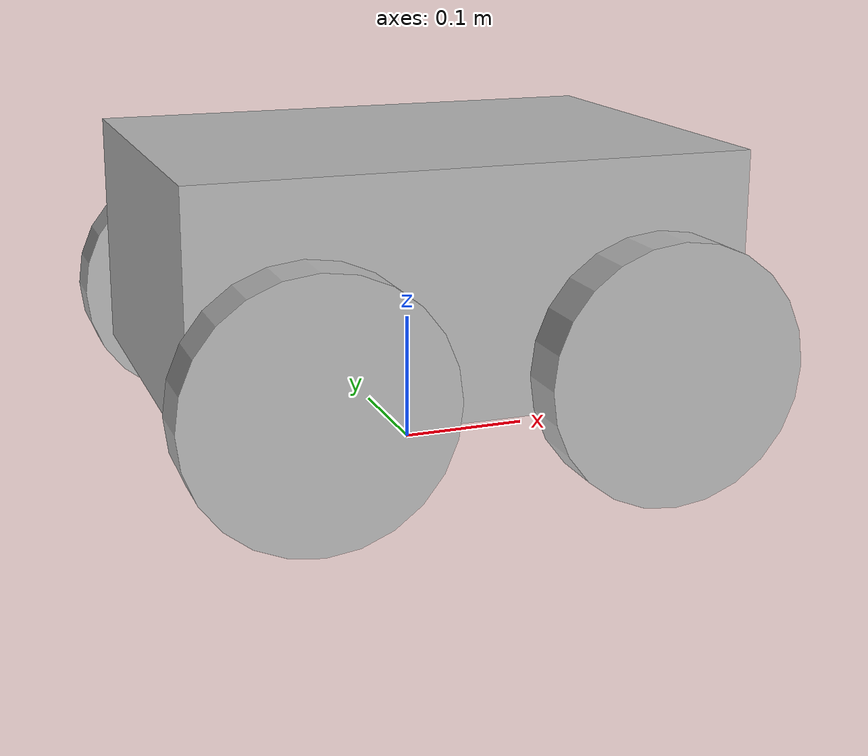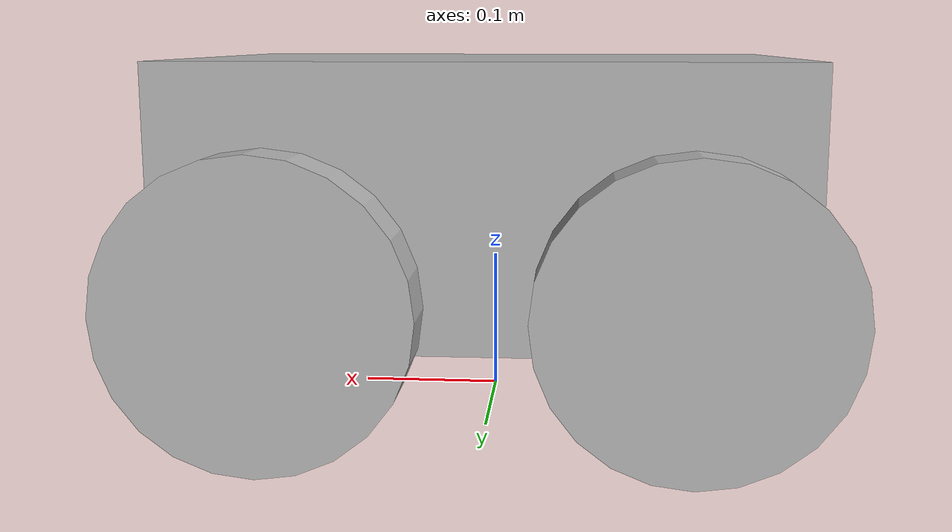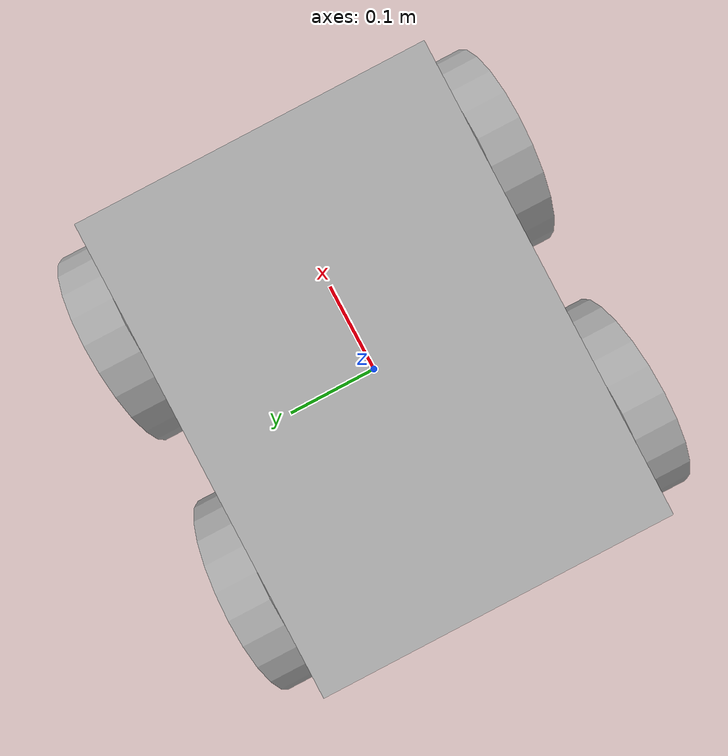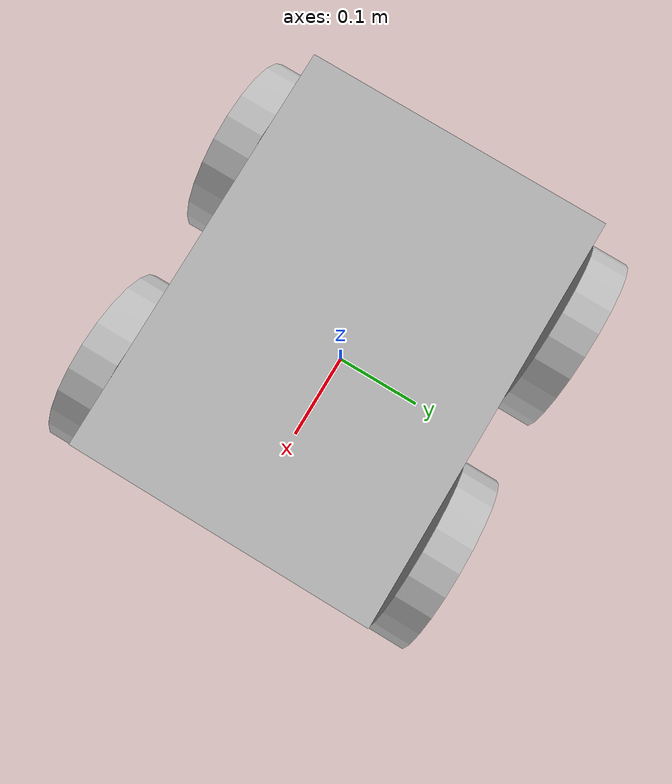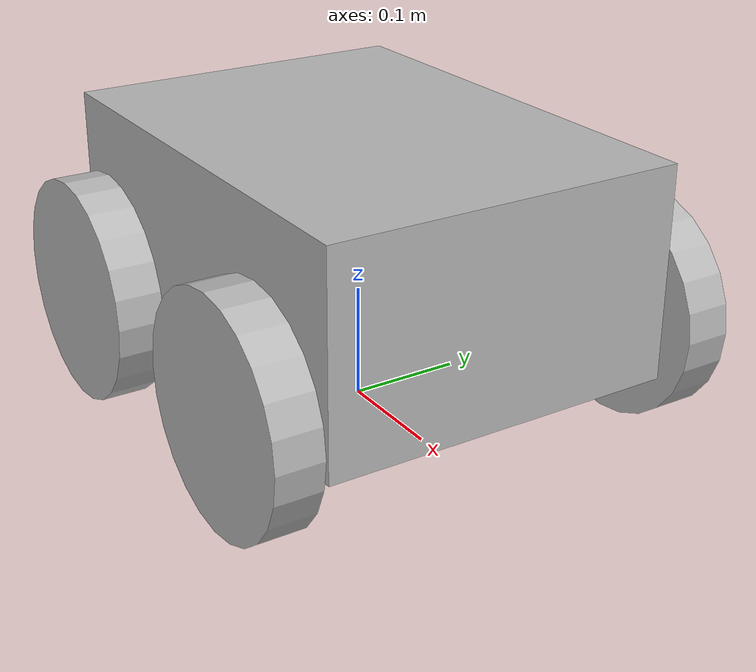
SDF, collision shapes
<?xml version="1.0"?>
<sdf version="1.6">
    <model name="X2">
        <pose>0 0 0.063494 0 0 0</pose>
        <enable_wind>1</enable_wind>
        <link name="base_link">
            <inertial>
                <pose>0.011999 0.002 0.066996 0 -0 0</pose>
                <mass>16.524</mass>
                <inertia>
                    <ixx>0.320605</ixx>
                    <ixy>-0.000800023</ixy>
                    <ixz>0.0163992</ixz>
                    <iyy>0.399205</iyy>
                    <iyz>-0.000900133</iyz>
                    <izz>0.455501</izz>
                </inertia>
            </inertial>
            <collision name="chassis_collision">
                <pose>0 0 0.092 0 -0 0</pose>
                <geometry>
                    <box>
                        <size>0.42 0.31 0.184</size>
                    </box>
                </geometry>
            </collision>
            <visual name="chassis_visual">
                <pose>0 0 -0.0655 1.5708 0 -1.5708</pose>
                <geometry>
                    <mesh>
                        <uri>meshes/x2_chassis.dae</uri>
                    </mesh>
                </geometry>
            </visual>
            <visual name="navsat_visual_1">
                <pose>-0.18 0.126 0.1895 0 -0 0</pose>
                <geometry>
                    <cylinder>
                        <length>0.016</length>
                        <radius>0.026</radius>
                    </cylinder>
                </geometry>
            </visual>
            <visual name="center_left_headlight_visual">
                <pose>0.22 0.05 0.0845 0 -0 -3.14159</pose>
                <geometry>
                    <mesh>
                        <uri>meshes/headlight.dae</uri>
                    </mesh>
                </geometry>
            </visual>
            <visual name="left_headlight_visual">
                <pose>0.22 0.145 0.0845 0 -0 -3.14159</pose>
                <geometry>
                    <mesh>
                        <uri>meshes/headlight.dae</uri>
                    </mesh>
                </geometry>
            </visual>
            <visual name="center_right_headlight_visual">
                <pose>0.22 -0.05 0.0845 0 -0 -3.14159</pose>
                <geometry>
                    <mesh>
                        <uri>meshes/headlight.dae</uri>
                    </mesh>
                </geometry>
            </visual>
            <visual name="right_headlight_visual">
                <pose>0.22 -0.145 0.0845 0 -0 -3.14159</pose>
                <geometry>
                    <mesh>
                        <uri>meshes/headlight.dae</uri>
                    </mesh>
                </geometry>
            </visual>
            <light name="left_light_source" type="spot">
                <pose>0.273 0.145 0.141 3.14159 1.56859 0</pose>
                <attenuation>
                    <range>25</range>
                    <linear>0</linear>
                    <constant>0.1</constant>
                    <quadratic>0.005</quadratic>
                </attenuation>
                <diffuse>0.8 0.8 0.5 1</diffuse>
                <specular>0.8 0.8 0.5 1</specular>
                <spot>
                    <inner_angle>1</inner_angle>
                    <outer_angle>1.1</outer_angle>
                    <falloff>1</falloff>
                </spot>
                <direction>0 0 -1</direction>
                <cast_shadows>1</cast_shadows>
            </light>
            <light name="right_light_source" type="spot">
                <pose>0.273 -0.145 0.141 3.14159 1.56859 0</pose>
                <attenuation>
                    <range>25</range>
                    <linear>0</linear>
                    <constant>0.1</constant>
                    <quadratic>0.005</quadratic>
                </attenuation>
                <diffuse>0.8 0.8 0.5 1</diffuse>
                <specular>0.8 0.8 0.5 1</specular>
                <spot>
                    <inner_angle>1</inner_angle>
                    <outer_angle>1.1</outer_angle>
                    <falloff>1</falloff>
                </spot>
                <direction>0 0 -1</direction>
                <cast_shadows>1</cast_shadows>
            </light>
            <light name="center_left_light_source" type="spot">
                <pose>0.273 0.05 0.141 3.14159 1.56859 0</pose>
                <attenuation>
                    <range>25</range>
                    <linear>0</linear>
                    <constant>0.1</constant>
                    <quadratic>0.005</quadratic>
                </attenuation>
                <diffuse>0.8 0.8 0.5 1</diffuse>
                <specular>0.8 0.8 0.5 1</specular>
                <spot>
                    <inner_angle>1</inner_angle>
                    <outer_angle>1.1</outer_angle>
                    <falloff>1</falloff>
                </spot>
                <direction>0 0 -1</direction>
                <cast_shadows>1</cast_shadows>
            </light>
            <light name="center_right_light_source" type="spot">
                <pose>0.273 -0.05 0.141 3.14159 1.56859 0</pose>
                <attenuation>
                    <range>25</range>
                    <linear>0</linear>
                    <constant>0.1</constant>
                    <quadratic>0.005</quadratic>
                </attenuation>
                <diffuse>0.8 0.8 0.5 1</diffuse>
                <specular>0.8 0.8 0.5 1</specular>
                <spot>
                    <inner_angle>1</inner_angle>
                    <outer_angle>1.1</outer_angle>
                    <falloff>1</falloff>
                </spot>
                <direction>0 0 -1</direction>
                <cast_shadows>1</cast_shadows>
            </light>
            <sensor name="imu_sensor" type="imu">
                <always_on>1</always_on>
                <update_rate>50</update_rate>
            <imu>
                <enable_orientation>0</enable_orientation>
                <angular_velocity>
                        <x>
                            <noise type="gaussian">
                                <mean>0</mean>
                                <stddev>0.009</stddev>
                                <bias_mean>0.00075</bias_mean>
                                <bias_stddev>0.005</bias_stddev>
                                <dynamic_bias_stddev>0.00002</dynamic_bias_stddev>
                                <dynamic_bias_correlation_time>400.0</dynamic_bias_correlation_time>
                                <precision>0.00025</precision>
                            </noise>
                        </x>
                        <y>
                            <noise type="gaussian">
                                <mean>0</mean>
                                <stddev>0.009</stddev>
                                <bias_mean>0.00075</bias_mean>
                                <bias_stddev>0.005</bias_stddev>
                                <dynamic_bias_stddev>0.00002</dynamic_bias_stddev>
                                <dynamic_bias_correlation_time>400.0</dynamic_bias_correlation_time>
                                <precision>0.00025</precision>
                            </noise>
                        </y>
                        <z>
                            <noise type="gaussian">
                                <mean>0</mean>
                                <stddev>0.009</stddev>
                                <bias_mean>0.00075</bias_mean>
                                <bias_stddev>0.005</bias_stddev>
                                <dynamic_bias_stddev>0.00002</dynamic_bias_stddev>
                                <dynamic_bias_correlation_time>400.0</dynamic_bias_correlation_time>
                                <precision>0.00025</precision>
                            </noise>
                        </z>
                    </angular_velocity>
                    <linear_acceleration>
                        <x>
                            <noise type="gaussian">
                                <mean>0</mean>
                                <stddev>0.021</stddev>
                                <bias_mean>0.05</bias_mean>
                                <bias_stddev>0.0075</bias_stddev>
                                <dynamic_bias_stddev>0.000375</dynamic_bias_stddev>
                                <dynamic_bias_correlation_time>175.0</dynamic_bias_correlation_time>
                                <precision>0.005</precision>
                            </noise>
                        </x>
                        <y>
                            <noise type="gaussian">
                                <mean>0</mean>
                                <stddev>0.021</stddev>
                                <bias_mean>0.05</bias_mean>
                                <bias_stddev>0.0075</bias_stddev>
                                <dynamic_bias_stddev>0.000375</dynamic_bias_stddev>
                                <dynamic_bias_correlation_time>175.0</dynamic_bias_correlation_time>
                                <precision>0.005</precision>
                            </noise>
                        </y>
                        <z>
                            <noise type="gaussian">
                                <mean>0</mean>
                                <stddev>0.021</stddev>
                                <bias_mean>0.05</bias_mean>
                                <bias_stddev>0.0075</bias_stddev>
                                <dynamic_bias_stddev>0.000375</dynamic_bias_stddev>
                                <dynamic_bias_correlation_time>175.0</dynamic_bias_correlation_time>
                                <precision>0.005</precision>
                            </noise>
                        </z>
                    </linear_acceleration>
                </imu>
            </sensor>
            <visual name="camera_visual">
                <pose>0.23 0 0.19 0 0 0</pose>
                <geometry>
                    <box>
                        <size>0.02 0.02 0.02</size>
                    </box>
                </geometry>
            </visual>
            <sensor name="camera_front" type="camera">
                <pose>0.23 0 0.19 0 0 0</pose>
                <always_on>1</always_on>
                <update_rate>20</update_rate>
                <camera name="camera_front">
                    <pose frame="">0 0 0 0 -1.5707 1.5707</pose>
                    <horizontal_fov>1.0472</horizontal_fov>
                    <lens>
                        <intrinsics>
                            <!-- fx = fy = width / ( 2 * tan (hfov / 2 ) ) -->
                            <fx>1108.5</fx>
                            <fy>1108.5</fy>
                            <!-- cx = ( width + 1 ) / 2 -->
                            <cx>640.5</cx>
                            <!-- cy = ( height + 1 ) / 2 -->
                            <cy>480.5</cy>
                            <s>0</s>
                        </intrinsics>
                    </lens>
                    <distortion>
                        <k1>0.0</k1>
                        <k2>0.0</k2>
                        <k3>0.0</k3>
                        <p1>0.0</p1>
                        <p2>0.0</p2>
                        <center>0.5 0.5</center>
                    </distortion>
                    <image>
                        <width>1280</width>
                        <height>960</height>
                        <format>R8G8B8</format>
                    </image>
                    <clip>
                        <near>0.01</near>
                        <far>300</far>
                    </clip>
                    <noise>
                        <type>gaussian</type>
                        <mean>0</mean>
                        <stddev>0.007</stddev>
                    </noise>
                </camera>
            </sensor>
            <visual name="laser_visual">
                <pose>0.0 0 0.23 0 -0 0</pose>
                <geometry>
                    <cylinder>
                        <radius>0.03</radius>
                        <length>0.1</length>
                    </cylinder>
                </geometry>
            </visual>
            <sensor name="front_laser" type="gpu_ray">
                <pose>0.0 0 0.27 0 -0 0</pose>
                <update_rate>10</update_rate>
                <lidar>
                    <scan>
                        <horizontal>
                            <samples>1800</samples>
                            <resolution>1</resolution>
                            <min_angle>-3.14159</min_angle>
                            <max_angle>3.14159</max_angle>
                        </horizontal>
                        <vertical>
                            <samples>16</samples>
                            <resolution>1</resolution>
                            <min_angle>-0.261799</min_angle>
                            <max_angle>0.261799</max_angle>
                        </vertical>
                    </scan>
                    <range>
                        <min>0.05</min>
                        <max>300</max>
                        <resolution>0.01</resolution>
                    </range>
                    <noise>
                        <type>gaussian</type>
                        <mean>0</mean>
                        <stddev>0.01</stddev>
                    </noise>
                </lidar>
            </sensor>
            <sensor name="front_cliff_laser" type="gpu_ray">
                <pose>0.25 0 0.082 0 -2.4434589 0</pose>
                <update_rate>50</update_rate>
                <lidar>
                    <scan>
                        <horizontal>
                            <samples>1</samples>
                            <resolution>1</resolution>
                            <min_angle>3.141592654</min_angle>
                            <max_angle>3.141592654</max_angle>
                        </horizontal>
                    </scan>
                    <range>
                        <min>0.04</min>
                        <max>40</max>
                        <resolution>0.01</resolution>
                    </range>
                    <noise>
                        <type>gaussian</type>
                        <mean>0</mean>
                        <stddev>0.01</stddev>
                    </noise>
                </lidar>
            </sensor>
            <sensor name="rear_cliff_laser" type="gpu_ray">
                <pose>-0.25 0 0.082 0 -0.698131 0</pose>
                <update_rate>50</update_rate>
                <lidar>
                    <scan>
                        <horizontal>
                            <samples>1</samples>
                            <resolution>1</resolution>
                            <min_angle>3.141592654</min_angle>
                            <max_angle>3.141592654</max_angle>
                        </horizontal>
                    </scan>
                    <range>
                        <min>0.04</min>
                        <max>40</max>
                        <resolution>0.01</resolution>
                    </range>
                    <noise>
                        <type>gaussian</type>
                        <mean>0</mean>
                        <stddev>0.01</stddev>
                    </noise>
                </lidar>
            </sensor>
        </link>
        <link name="front_left_wheel">
            <pose>0.131 0.187795 0.0345 0 -0 0</pose>
            <inertial>
                <mass>0.477</mass>
                <inertia>
                    <ixx>0.0013</ixx>
                    <ixy>0</ixy>
                    <ixz>0</ixz>
                    <iyy>0.0024</iyy>
                    <iyz>0</iyz>
                    <izz>0.0013</izz>
                </inertia>
            </inertial>
            <collision name="collision">
                <pose>0 0 0 1.5707963267948966 -0 0</pose>
                <geometry>
                    <cylinder>
                        <length>0.04</length>
                        <radius>0.098</radius>
                    </cylinder>
                </geometry>
                <surface>
                    <friction>
                        <ode>
                            <mu>1</mu>
                            <mu2>1</mu2>
                            <slip1>0.0026</slip1>
                            <slip2>0</slip2>
                            <fdir1>0 0 1</fdir1>
                        </ode>
                    </friction>
                </surface>
            </collision>
            <visual name="visual">
                <pose>0 0 0 1.5708 -0 0</pose>
                <geometry>
                    <mesh>
                        <uri>meshes/x2_wheel_left.dae</uri>
                    </mesh>
                </geometry>
            </visual>
        </link>
        <link name="front_right_wheel">
            <pose>0.131 -0.187795 0.0345 0 -0 0</pose>
            <inertial>
                <mass>0.477</mass>
                <inertia>
                    <ixx>0.0013</ixx>
                    <ixy>0</ixy>
                    <ixz>0</ixz>
                    <iyy>0.0024</iyy>
                    <iyz>0</iyz>
                    <izz>0.0013</izz>
                </inertia>
            </inertial>
            <collision name="collision">
                <pose>0 0 0 1.5707963267948966 -0 0</pose>
                <geometry>
                    <cylinder>
                        <length>0.04</length>
                        <radius>0.098</radius>
                    </cylinder>
                </geometry>
                <surface>
                    <friction>
                        <ode>
                            <mu>1</mu>
                            <mu2>1</mu2>
                            <slip1>0.0026</slip1>
                            <slip2>0</slip2>
                            <fdir1>0 0 1</fdir1>
                        </ode>
                    </friction>
                </surface>
            </collision>
            <visual name="visual">
                <pose>0 0 0 1.5708 -0 0</pose>
                <geometry>
                    <mesh>
                        <uri>meshes/x2_wheel_right.dae</uri>
                    </mesh>
                </geometry>
            </visual>
        </link>
        <link name="rear_left_wheel">
            <pose>-0.131 0.187795 0.0345 0 -0 0</pose>
            <inertial>
                <mass>0.477</mass>
                <inertia>
                    <ixx>0.0013</ixx>
                    <ixy>0</ixy>
                    <ixz>0</ixz>
                    <iyy>0.0024</iyy>
                    <iyz>0</iyz>
                    <izz>0.0013</izz>
                </inertia>
            </inertial>
            <collision name="collision">
                <pose>0 0 0 1.5707963267948966 -0 0</pose>
                <geometry>
                    <cylinder>
                        <length>0.04</length>
                        <radius>0.098</radius>
                    </cylinder>
                </geometry>
                <surface>
                    <friction>
                        <ode>
                            <mu>1</mu>
                            <mu2>1</mu2>
                            <slip1>0.0026</slip1>
                            <slip2>0</slip2>
                            <fdir1>0 0 1</fdir1>
                        </ode>
                    </friction>
                </surface>
            </collision>
            <visual name="visual">
                <pose>0 0 0 1.5708 -0 0</pose>
                <geometry>
                    <mesh>
                        <uri>meshes/x2_wheel_left.dae</uri>
                    </mesh>
                </geometry>
            </visual>
        </link>
        <link name="rear_right_wheel">
            <pose>-0.131 -0.187795 0.0345 0 -0 0</pose>
            <inertial>
                <mass>0.477</mass>
                <inertia>
                    <ixx>0.0013</ixx>
                    <ixy>0</ixy>
                    <ixz>0</ixz>
                    <iyy>0.0024</iyy>
                    <iyz>0</iyz>
                    <izz>0.0013</izz>
                </inertia>
            </inertial>
            <collision name="collision">
                <pose>0 0 0 1.5707963267948966 -0 0</pose>
                <geometry>
                    <cylinder>
                        <length>0.04</length>
                        <radius>0.098</radius>
                    </cylinder>
                </geometry>
                <surface>
                    <friction>
                        <ode>
                            <mu>1</mu>
                            <mu2>1</mu2>
                            <slip1>0.0026</slip1>
                            <slip2>0</slip2>
                            <fdir1>0 0 1</fdir1>
                        </ode>
                    </friction>
                </surface>
            </collision>
            <visual name="visual">
                <pose>0 0 0 1.5708 -0 0</pose>
                <geometry>
                    <mesh>
                        <uri>meshes/x2_wheel_right.dae</uri>
                    </mesh>
                </geometry>
            </visual>
        </link>
        <joint name="front_left_wheel_joint" type="revolute">
            <child>front_left_wheel</child>
            <parent>base_link</parent>
            <axis>
                <xyz>0 1 0</xyz>
                <limit>
                    <lower>-1e+16</lower>
                    <upper>1e+16</upper>
                </limit>
                <use_parent_model_frame>1</use_parent_model_frame>
            </axis>
        </joint>
        <joint name="rear_left_wheel_joint" type="revolute">
            <parent>base_link</parent>
            <child>rear_left_wheel</child>
            <axis>
                <xyz>0 1 0</xyz>
                <limit>
                    <lower>-1.79769e+308</lower>
                    <upper>+1.79769e+308</upper>
                </limit>
            </axis>
        </joint>
        <joint name="rear_right_wheel_joint" type="revolute">
            <parent>base_link</parent>
            <child>rear_right_wheel</child>
            <axis>
                <xyz>0 1 0</xyz>
                <limit>
                    <lower>-1.79769e+308</lower>
                    <upper>+1.79769e+308</upper>
                </limit>
            </axis>
        </joint>
        <joint name="front_right_wheel_joint" type="revolute">
            <parent>base_link</parent>
            <child>front_right_wheel</child>
            <axis>
                <xyz>0 1 0</xyz>
                <limit>
                    <lower>-1.79769e+308</lower>
                    <upper>+1.79769e+308</upper>
                </limit>
            </axis>
        </joint>
    </model>
</sdf>
